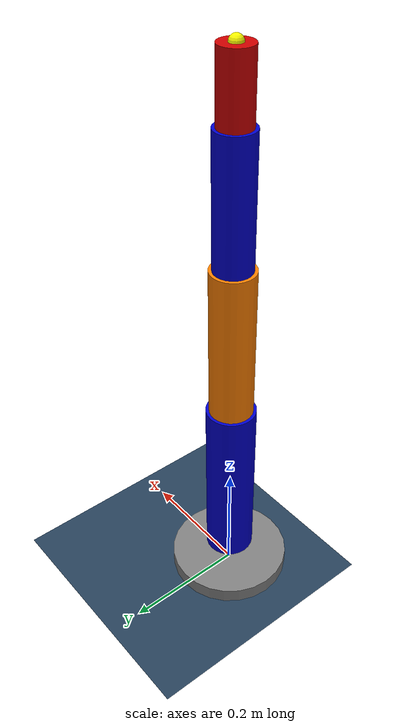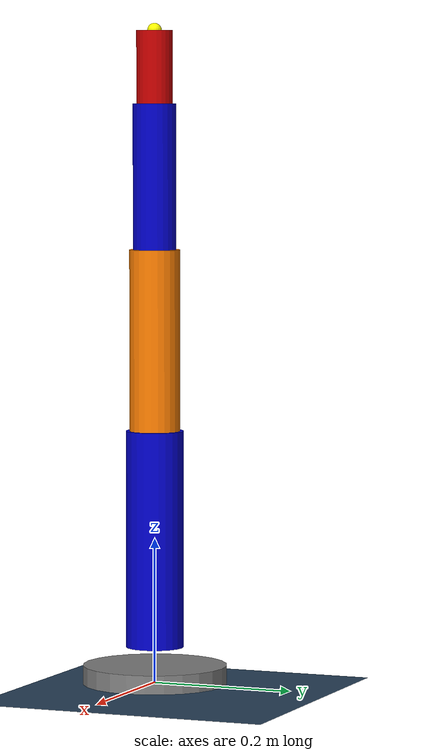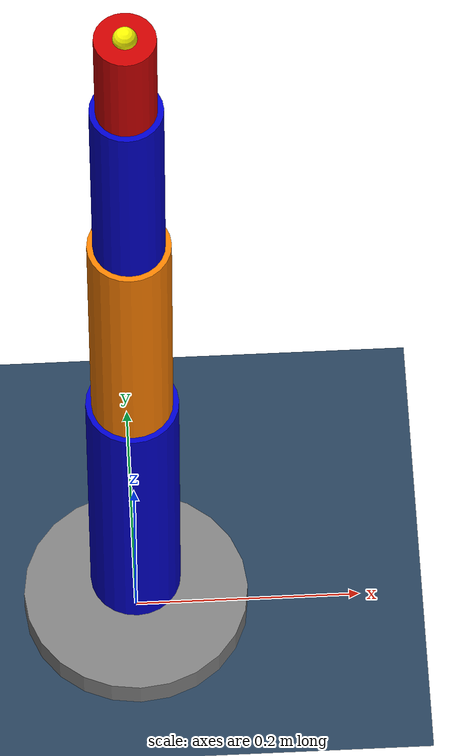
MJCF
<mujoco model="robot_arm_4dof">
  <compiler angle="radian" meshdir="meshes"/>

  <option timestep="0.002" integrator="RK4"/>

  <visual>
    <headlight diffuse="0.6 0.6 0.6" ambient="0.3 0.3 0.3" specular="0 0 0"/>
    <rgba haze="0.15 0.25 0.35 1"/>
    <global azimuth="120" elevation="-20"/>
  </visual>

  <asset>
    <texture type="skybox" builtin="gradient" rgb1="0.3 0.5 0.7" rgb2="0 0 0" width="512" height="512"/>
    <texture name="groundplane" type="2d" builtin="checker" rgb1="0.2 0.3 0.4" rgb2="0.1 0.2 0.3"
             width="300" height="300" mark="edge" markrgb="0.8 0.8 0.8"/>
    <material name="groundplane" texture="groundplane" texrepeat="5 5" texuniform="true" reflectance="0.2"/>
  </asset>

  <worldbody>
    <light pos="0 0 1.5" dir="0 0 -1" directional="false"/>
    <geom name="floor" pos="0 0 0" size="0 0 0.05" type="plane" material="groundplane"/>

    <!-- Base Link -->
    <body name="base_link" pos="0 0 0">
      <geom name="base_geom" type="cylinder" size="0.1 0.025" rgba="0.5 0.5 0.5 1" mass="1.0"/>
      <inertial pos="0 0 0.025" mass="1.0" diaginertia="0.01 0.01 0.01"/>

      <!-- Link 1 -->
      <body name="link1" pos="0 0 0.05">
        <joint name="joint1" type="hinge" axis="0 0 1" range="-3.14159 3.14159" damping="0.1"/>
        <geom name="link1_geom" type="cylinder" size="0.04 0.15" pos="0 0 0.15" rgba="0 0 0.8 1" mass="0.5"/>
        <inertial pos="0 0 0.15" mass="0.5" diaginertia="0.005 0.005 0.001"/>

        <!-- Link 2 -->
        <body name="link2" pos="0 0 0.3">
          <joint name="joint2" type="hinge" axis="0 1 0" range="-1.5708 1.5708" damping="0.1"/>
          <geom name="link2_geom" type="cylinder" size="0.035 0.125" pos="0 0 0.125" rgba="1 0.5 0 1" mass="0.4"/>
          <inertial pos="0 0 0.125" mass="0.4" diaginertia="0.004 0.004 0.001"/>

          <!-- Link 3 -->
          <body name="link3" pos="0 0 0.25">
            <joint name="joint3" type="hinge" axis="0 1 0" range="-1.5708 1.5708" damping="0.1"/>
            <geom name="link3_geom" type="cylinder" size="0.03 0.1" pos="0 0 0.1" rgba="0 0 0.8 1" mass="0.3"/>
            <inertial pos="0 0 0.1" mass="0.3" diaginertia="0.003 0.003 0.0005"/>

            <!-- End Effector -->
            <body name="end_effector" pos="0 0 0.2">
              <joint name="joint4" type="hinge" axis="0 0 1" range="-3.14159 3.14159" damping="0.05"/>
              <geom name="ee_geom" type="cylinder" size="0.025 0.05" pos="0 0 0.05" rgba="0.8 0 0 1" mass="0.2"/>
              <inertial pos="0 0 0.05" mass="0.2" diaginertia="0.001 0.001 0.0002"/>

              <!-- End effector tip (for visualization/target) -->
              <site name="ee_tip" pos="0 0 0.1" size="0.01" rgba="1 1 0 1"/>
            </body>
          </body>
        </body>
      </body>
    </body>
  </worldbody>

  <actuator>
    <!-- Position servos for each joint -->
    <position name="actuator1" joint="joint1" kp="100" kv="10" ctrlrange="-3.14159 3.14159"/>
    <position name="actuator2" joint="joint2" kp="100" kv="10" ctrlrange="-1.5708 1.5708"/>
    <position name="actuator3" joint="joint3" kp="100" kv="10" ctrlrange="-1.5708 1.5708"/>
    <position name="actuator4" joint="joint4" kp="50" kv="5" ctrlrange="-3.14159 3.14159"/>
  </actuator>

  <sensor>
    <!-- Joint position sensors -->
    <jointpos name="joint1_pos" joint="joint1"/>
    <jointpos name="joint2_pos" joint="joint2"/>
    <jointpos name="joint3_pos" joint="joint3"/>
    <jointpos name="joint4_pos" joint="joint4"/>

    <!-- Joint velocity sensors -->
    <jointvel name="joint1_vel" joint="joint1"/>
    <jointvel name="joint2_vel" joint="joint2"/>
    <jointvel name="joint3_vel" joint="joint3"/>
    <jointvel name="joint4_vel" joint="joint4"/>

    <!-- End effector position -->
    <framepos name="ee_position" objtype="site" objname="ee_tip"/>
  </sensor>
</mujoco>
